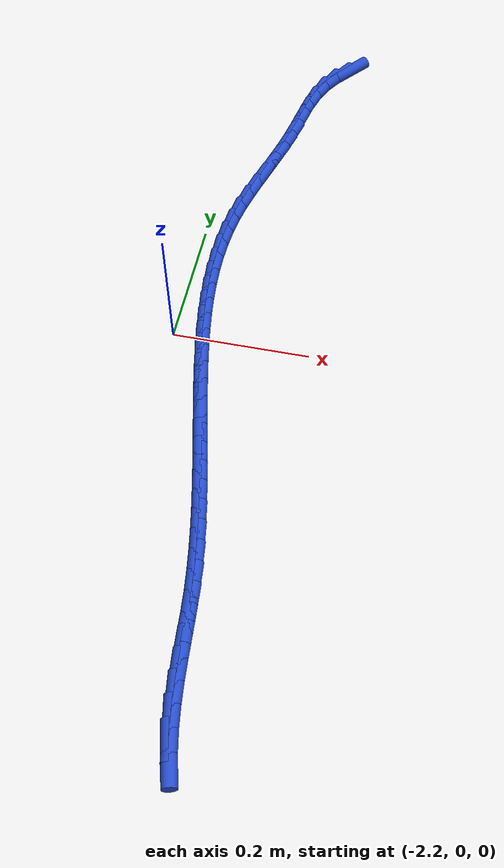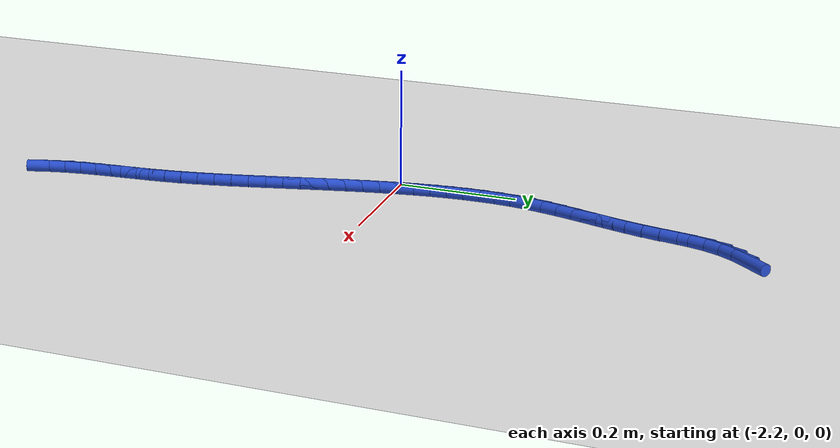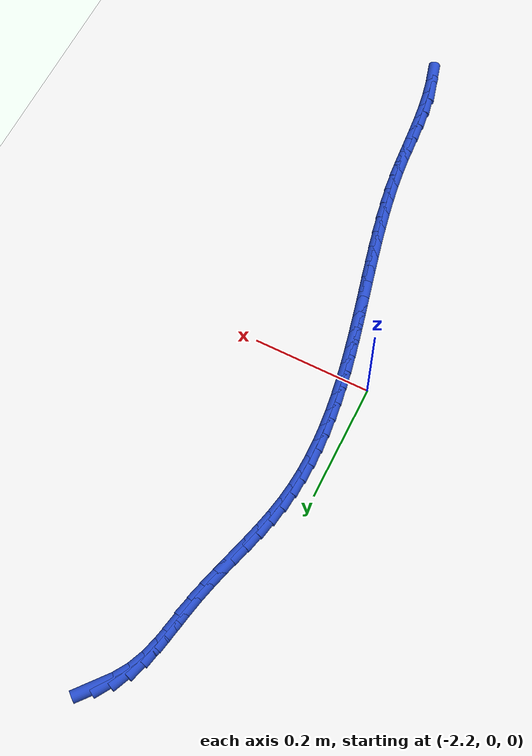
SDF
<sdf version="1.6">
 <world name="default">
  <model name="ground_plane">
   <static>1</static>
   <link name="link">
    <collision name="collision">
     <geometry><plane><normal>0 0 1</normal><size>100 100</size></plane></geometry>
     <surface><friction><ode><mu>100</mu><mu2>50</mu2></ode></friction></surface>
    </collision>
    <visual name="visual">
     <cast_shadows>0</cast_shadows>
     <geometry><plane><normal>0 0 1</normal><size>100 100</size></plane></geometry>
     <material>
      <script><uri>file://media/materials/scripts/gazebo.material</uri><name>Gazebo/WhiteGlow</name></script>
     </material>
    </visual>
   </link>
  </model>
  <model name="line">
   <link name="link_105">
    <pose>-2.0451011327353075 0.6059381143410887 0.01 0 1.57 0.8765070455269848</pose>
    <collision name="collision">
     <geometry><cylinder><radius>0.01</radius><length>0.08</length></cylinder></geometry>
    </collision>
    <visual name="visual">
     <material>
      <script><name>Gazebo/Blue</name><uri>file://media/materials/scripts/gazebo.material</uri></script>
     </material>
     <geometry><cylinder><radius>0.01</radius><length>0.08</length></cylinder></geometry>
    </visual>
   </link>
   <link name="link_106">
    <pose>-2.0628292929744494 0.5846448895388238 0.01 0 1.57 1.0105025616297145</pose>
    <collision name="collision">
     <geometry><cylinder><radius>0.01</radius><length>0.08</length></cylinder></geometry>
    </collision>
    <visual name="visual">
     <material>
      <script><name>Gazebo/Blue</name><uri>file://media/materials/scripts/gazebo.material</uri></script>
     </material>
     <geometry><cylinder><radius>0.01</radius><length>0.08</length></cylinder></geometry>
    </visual>
   </link>
   <link name="link_107">
    <pose>-2.0773413886523078 0.5615128403104395 0.01 0 1.57 1.1645676651206631</pose>
    <collision name="collision">
     <geometry><cylinder><radius>0.01</radius><length>0.08</length></cylinder></geometry>
    </collision>
    <visual name="visual">
     <material>
      <script><name>Gazebo/Blue</name><uri>file://media/materials/scripts/gazebo.material</uri></script>
     </material>
     <geometry><cylinder><radius>0.01</radius><length>0.08</length></cylinder></geometry>
    </visual>
   </link>
   <link name="link_108">
    <pose>-2.0881981461120454 0.5362736509443689 0.01 0 1.57 1.2863366066846509</pose>
    <collision name="collision">
     <geometry><cylinder><radius>0.01</radius><length>0.08</length></cylinder></geometry>
    </collision>
    <visual name="visual">
     <material>
      <script><name>Gazebo/Blue</name><uri>file://media/materials/scripts/gazebo.material</uri></script>
     </material>
     <geometry><cylinder><radius>0.01</radius><length>0.08</length></cylinder></geometry>
    </visual>
   </link>
   <link name="link_109">
    <pose>-2.0960904816906867 0.5092810675359173 0.01 0 1.57 1.358252951638244</pose>
    <collision name="collision">
     <geometry><cylinder><radius>0.01</radius><length>0.08</length></cylinder></geometry>
    </collision>
    <visual name="visual">
     <material>
      <script><name>Gazebo/Blue</name><uri>file://media/materials/scripts/gazebo.material</uri></script>
     </material>
     <geometry><cylinder><radius>0.01</radius><length>0.08</length></cylinder></geometry>
    </visual>
   </link>
   <link name="link_110">
    <pose>-2.1021636404157062 0.4811389007957508 0.01 0 1.57 1.3847210854813032</pose>
    <collision name="collision">
     <geometry><cylinder><radius>0.01</radius><length>0.08</length></cylinder></geometry>
    </collision>
    <visual name="visual">
     <material>
      <script><name>Gazebo/Blue</name><uri>file://media/materials/scripts/gazebo.material</uri></script>
     </material>
     <geometry><cylinder><radius>0.01</radius><length>0.08</length></cylinder></geometry>
    </visual>
   </link>
   <link name="link_111">
    <pose>-2.107564102062997 0.4524516410457826 0.01 0 1.57 1.3686703575400883</pose>
    <collision name="collision">
     <geometry><cylinder><radius>0.01</radius><length>0.08</length></cylinder></geometry>
    </collision>
    <visual name="visual">
     <material>
      <script><name>Gazebo/Blue</name><uri>file://media/materials/scripts/gazebo.material</uri></script>
     </material>
     <geometry><cylinder><radius>0.01</radius><length>0.08</length></cylinder></geometry>
    </visual>
   </link>
   <link name="link_112">
    <pose>-2.1134312896337626 0.42382064433001476 0.01 0 1.57 1.3298997513627309</pose>
    <collision name="collision">
     <geometry><cylinder><radius>0.01</radius><length>0.08</length></cylinder></geometry>
    </collision>
    <visual name="visual">
     <material>
      <script><name>Gazebo/Blue</name><uri>file://media/materials/scripts/gazebo.material</uri></script>
     </material>
     <geometry><cylinder><radius>0.01</radius><length>0.08</length></cylinder></geometry>
    </visual>
   </link>
   <link name="link_113">
    <pose>-2.120362575452353 0.3956065140061869 0.01 0 1.57 1.3017917074343772</pose>
    <collision name="collision">
     <geometry><cylinder><radius>0.01</radius><length>0.08</length></cylinder></geometry>
    </collision>
    <visual name="visual">
     <material>
      <script><name>Gazebo/Blue</name><uri>file://media/materials/scripts/gazebo.material</uri></script>
     </material>
     <geometry><cylinder><radius>0.01</radius><length>0.08</length></cylinder></geometry>
    </visual>
   </link>
   <link name="link_114">
    <pose>-2.1280387351310086 0.3677627455174387 0.01 0 1.57 1.2878319488418943</pose>
    <collision name="collision">
     <geometry><cylinder><radius>0.01</radius><length>0.08</length></cylinder></geometry>
    </collision>
    <visual name="visual">
     <material>
      <script><name>Gazebo/Blue</name><uri>file://media/materials/scripts/gazebo.material</uri></script>
     </material>
     <geometry><cylinder><radius>0.01</radius><length>0.08</length></cylinder></geometry>
    </visual>
   </link>
   <link name="link_115">
    <pose>-2.1360520356680004 0.3402035230626302 0.01 0 1.57 1.2882636323386303</pose>
    <collision name="collision">
     <geometry><cylinder><radius>0.01</radius><length>0.08</length></cylinder></geometry>
    </collision>
    <visual name="visual">
     <material>
      <script><name>Gazebo/Blue</name><uri>file://media/materials/scripts/gazebo.material</uri></script>
     </material>
     <geometry><cylinder><radius>0.01</radius><length>0.08</length></cylinder></geometry>
    </visual>
   </link>
   <link name="link_116">
    <pose>-2.1439947440616027 0.3128430308406224 0.01 0 1.57 1.3034096502675063</pose>
    <collision name="collision">
     <geometry><cylinder><radius>0.01</radius><length>0.08</length></cylinder></geometry>
    </collision>
    <visual name="visual">
     <material>
      <script><name>Gazebo/Blue</name><uri>file://media/materials/scripts/gazebo.material</uri></script>
     </material>
     <geometry><cylinder><radius>0.01</radius><length>0.08</length></cylinder></geometry>
    </visual>
   </link>
   <link name="link_117">
    <pose>-2.15145912731009 0.2855954530502759 0.01 0 1.57 1.3336745681096756</pose>
    <collision name="collision">
     <geometry><cylinder><radius>0.01</radius><length>0.08</length></cylinder></geometry>
    </collision>
    <visual name="visual">
     <material>
      <script><name>Gazebo/Blue</name><uri>file://media/materials/scripts/gazebo.material</uri></script>
     </material>
     <geometry><cylinder><radius>0.01</radius><length>0.08</length></cylinder></geometry>
    </visual>
   </link>
   <link name="link_118">
    <pose>-2.158037452411735 0.2583749738904505 0.01 0 1.57 1.3794357062294926</pose>
    <collision name="collision">
     <geometry><cylinder><radius>0.01</radius><length>0.08</length></cylinder></geometry>
    </collision>
    <visual name="visual">
     <material>
      <script><name>Gazebo/Blue</name><uri>file://media/materials/scripts/gazebo.material</uri></script>
     </material>
     <geometry><cylinder><radius>0.01</radius><length>0.08</length></cylinder></geometry>
    </visual>
   </link>
   <link name="link_119">
    <pose>-2.1633222727455914 0.23109582833513195 0.01 0 1.57 1.4360398229242077</pose>
    <collision name="collision">
     <geometry><cylinder><radius>0.01</radius><length>0.08</length></cylinder></geometry>
    </collision>
    <visual name="visual">
     <material>
      <script><name>Gazebo/Blue</name><uri>file://media/materials/scripts/gazebo.material</uri></script>
     </material>
     <geometry><cylinder><radius>0.01</radius><length>0.08</length></cylinder></geometry>
    </visual>
   </link>
   <link name="link_120">
    <pose>-2.1670371616257325 0.20369548110676042 0.01 0 1.57 1.4907951393421597</pose>
    <collision name="collision">
     <geometry><cylinder><radius>0.01</radius><length>0.08</length></cylinder></geometry>
    </collision>
    <visual name="visual">
     <material>
      <script><name>Gazebo/Blue</name><uri>file://media/materials/scripts/gazebo.material</uri></script>
     </material>
     <geometry><cylinder><radius>0.01</radius><length>0.08</length></cylinder></geometry>
    </visual>
   </link>
   <link name="link_121">
    <pose>-2.169243834570994 0.17617134931866876 0.01 0 1.57 1.5413561769339208</pose>
    <collision name="collision">
     <geometry><cylinder><radius>0.01</radius><length>0.08</length></cylinder></geometry>
    </collision>
    <visual name="visual">
     <material>
      <script><name>Gazebo/Blue</name><uri>file://media/materials/scripts/gazebo.material</uri></script>
     </material>
     <geometry><cylinder><radius>0.01</radius><length>0.08</length></cylinder></geometry>
    </visual>
   </link>
   <link name="link_122">
    <pose>-2.170057823685849 0.14853039172948945 0.01 0 1.57 -1.5541078276756584</pose>
    <collision name="collision">
     <geometry><cylinder><radius>0.01</radius><length>0.08</length></cylinder></geometry>
    </collision>
    <visual name="visual">
     <material>
      <script><name>Gazebo/Blue</name><uri>file://media/materials/scripts/gazebo.material</uri></script>
     </material>
     <geometry><cylinder><radius>0.01</radius><length>0.08</length></cylinder></geometry>
    </visual>
   </link>
   <link name="link_123">
    <pose>-2.169594661074772 0.12077956709785441 0.01 0 1.57 -1.5125296984300345</pose>
    <collision name="collision">
     <geometry><cylinder><radius>0.01</radius><length>0.08</length></cylinder></geometry>
    </collision>
    <visual name="visual">
     <material>
      <script><name>Gazebo/Blue</name><uri>file://media/materials/scripts/gazebo.material</uri></script>
     </material>
     <geometry><cylinder><radius>0.01</radius><length>0.08</length></cylinder></geometry>
    </visual>
   </link>
   <link name="link_124">
    <pose>-2.1679698788422335 0.09292583418239667 0.01 0 1.57 -1.475525686442755</pose>
    <collision name="collision">
     <geometry><cylinder><radius>0.01</radius><length>0.08</length></cylinder></geometry>
    </collision>
    <visual name="visual">
     <material>
      <script><name>Gazebo/Blue</name><uri>file://media/materials/scripts/gazebo.material</uri></script>
     </material>
     <geometry><cylinder><radius>0.01</radius><length>0.08</length></cylinder></geometry>
    </visual>
   </link>
   <link name="link_125">
    <pose>-2.165299009092709 0.0649761517417482 0.01 0 1.57 -1.4430508606623411</pose>
    <collision name="collision">
     <geometry><cylinder><radius>0.01</radius><length>0.08</length></cylinder></geometry>
    </collision>
    <visual name="visual">
     <material>
      <script><name>Gazebo/Blue</name><uri>file://media/materials/scripts/gazebo.material</uri></script>
     </material>
     <geometry><cylinder><radius>0.01</radius><length>0.08</length></cylinder></geometry>
    </visual>
   </link>
   <link name="link_126">
    <pose>-2.161697583930671 0.03693747853454095 0.01 0 1.57 -1.4150155630818928</pose>
    <collision name="collision">
     <geometry><cylinder><radius>0.01</radius><length>0.08</length></cylinder></geometry>
    </collision>
    <visual name="visual">
     <material>
      <script><name>Gazebo/Blue</name><uri>file://media/materials/scripts/gazebo.material</uri></script>
     </material>
     <geometry><cylinder><radius>0.01</radius><length>0.08</length></cylinder></geometry>
    </visual>
   </link>
   <link name="link_127">
    <pose>-2.1572811354605923 0.008816773319408028 0.01 0 1.57 -1.3913055791698343</pose>
    <collision name="collision">
     <geometry><cylinder><radius>0.01</radius><length>0.08</length></cylinder></geometry>
    </collision>
    <visual name="visual">
     <material>
      <script><name>Gazebo/Blue</name><uri>file://media/materials/scripts/gazebo.material</uri></script>
     </material>
     <geometry><cylinder><radius>0.01</radius><length>0.08</length></cylinder></geometry>
    </visual>
   </link>
   <link name="link_128">
    <pose>-2.152165195786947 -0.01937900514501863 0.01 0 1.57 -1.3717982521384768</pose>
    <collision name="collision">
     <geometry><cylinder><radius>0.01</radius><length>0.08</length></cylinder></geometry>
    </collision>
    <visual name="visual">
     <material>
      <script><name>Gazebo/Blue</name><uri>file://media/materials/scripts/gazebo.material</uri></script>
     </material>
     <geometry><cylinder><radius>0.01</radius><length>0.08</length></cylinder></geometry>
    </visual>
   </link>
   <link name="link_129">
    <pose>-2.146465297014207 -0.04764289810010674 0.01 0 1.57 -1.3563747421648016</pose>
    <collision name="collision">
     <geometry><cylinder><radius>0.01</radius><length>0.08</length></cylinder></geometry>
    </collision>
    <visual name="visual">
     <material>
      <script><name>Gazebo/Blue</name><uri>file://media/materials/scripts/gazebo.material</uri></script>
     </material>
     <geometry><cylinder><radius>0.01</radius><length>0.08</length></cylinder></geometry>
    </visual>
   </link>
   <link name="link_130">
    <pose>-2.1402969712468463 -0.0759679467872239 0.01 0 1.57 -1.3449289434839131</pose>
    <collision name="collision">
     <geometry><cylinder><radius>0.01</radius><length>0.08</length></cylinder></geometry>
    </collision>
    <visual name="visual">
     <material>
      <script><name>Gazebo/Blue</name><uri>file://media/materials/scripts/gazebo.material</uri></script>
     </material>
     <geometry><cylinder><radius>0.01</radius><length>0.08</length></cylinder></geometry>
    </visual>
   </link>
   <link name="link_131">
    <pose>-2.1337757505893387 -0.1043471924477379 0.01 0 1.57 -1.3373736649239343</pose>
    <collision name="collision">
     <geometry><cylinder><radius>0.01</radius><length>0.08</length></cylinder></geometry>
    </collision>
    <visual name="visual">
     <material>
      <script><name>Gazebo/Blue</name><uri>file://media/materials/scripts/gazebo.material</uri></script>
     </material>
     <geometry><cylinder><radius>0.01</radius><length>0.08</length></cylinder></geometry>
    </visual>
   </link>
   <link name="link_132">
    <pose>-2.1270171671461555 -0.13277367632301626 0.01 0 1.57 -1.3336446397047366</pose>
    <collision name="collision">
     <geometry><cylinder><radius>0.01</radius><length>0.08</length></cylinder></geometry>
    </collision>
    <visual name="visual">
     <material>
      <script><name>Gazebo/Blue</name><uri>file://media/materials/scripts/gazebo.material</uri></script>
     </material>
     <geometry><cylinder><radius>0.01</radius><length>0.08</length></cylinder></geometry>
    </visual>
   </link>
   <link name="link_133">
    <pose>-2.120136753021771 -0.1612404396544276 0.01 0 1.57 -1.3337028215714029</pose>
    <collision name="collision">
     <geometry><cylinder><radius>0.01</radius><length>0.08</length></cylinder></geometry>
    </collision>
    <visual name="visual">
     <material>
      <script><name>Gazebo/Blue</name><uri>file://media/materials/scripts/gazebo.material</uri></script>
     </material>
     <geometry><cylinder><radius>0.01</radius><length>0.08</length></cylinder></geometry>
    </visual>
   </link>
   <link name="link_134">
    <pose>-2.1132500403206587 -0.18974052368333794 0.01 0 1.57 -1.3375352861655907</pose>
    <collision name="collision">
     <geometry><cylinder><radius>0.01</radius><length>0.08</length></cylinder></geometry>
    </collision>
    <visual name="visual">
     <material>
      <script><name>Gazebo/Blue</name><uri>file://media/materials/scripts/gazebo.material</uri></script>
     </material>
     <geometry><cylinder><radius>0.01</radius><length>0.08</length></cylinder></geometry>
    </visual>
   </link>
   <link name="link_135">
    <pose>-2.1064725611472914 -0.2182669696511157 0.01 0 1.57 -1.3451549102691003</pose>
    <collision name="collision">
     <geometry><cylinder><radius>0.01</radius><length>0.08</length></cylinder></geometry>
    </collision>
    <visual name="visual">
     <material>
      <script><name>Gazebo/Blue</name><uri>file://media/materials/scripts/gazebo.material</uri></script>
     </material>
     <geometry><cylinder><radius>0.01</radius><length>0.08</length></cylinder></geometry>
    </visual>
   </link>
   <link name="link_136">
    <pose>-2.0999198476061425 -0.24681281879912867 0.01 0 1.57 -1.3565988569734626</pose>
    <collision name="collision">
     <geometry><cylinder><radius>0.01</radius><length>0.08</length></cylinder></geometry>
    </collision>
    <visual name="visual">
     <material>
      <script><name>Gazebo/Blue</name><uri>file://media/materials/scripts/gazebo.material</uri></script>
     </material>
     <geometry><cylinder><radius>0.01</radius><length>0.08</length></cylinder></geometry>
    </visual>
   </link>
   <link name="link_137">
    <pose>-2.0937074318016844 -0.2753711123687444 0.01 0 1.57 -1.3719257562513654</pose>
    <collision name="collision">
     <geometry><cylinder><radius>0.01</radius><length>0.08</length></cylinder></geometry>
    </collision>
    <visual name="visual">
     <material>
      <script><name>Gazebo/Blue</name><uri>file://media/materials/scripts/gazebo.material</uri></script>
     </material>
     <geometry><cylinder><radius>0.01</radius><length>0.08</length></cylinder></geometry>
    </visual>
   </link>
   <link name="link_138">
    <pose>-2.0879508458383906 -0.3039348916013306 0.01 0 1.57 -1.391211341918376</pose>
    <collision name="collision">
     <geometry><cylinder><radius>0.01</radius><length>0.08</length></cylinder></geometry>
    </collision>
    <visual name="visual">
     <material>
      <script><name>Gazebo/Blue</name><uri>file://media/materials/scripts/gazebo.material</uri></script>
     </material>
     <geometry><cylinder><radius>0.01</radius><length>0.08</length></cylinder></geometry>
    </visual>
   </link>
   <link name="link_139">
    <pose>-2.082765621820734 -0.332497197738255 0.01 0 1.57 -1.4145421961945794</pose>
    <collision name="collision">
     <geometry><cylinder><radius>0.01</radius><length>0.08</length></cylinder></geometry>
    </collision>
    <visual name="visual">
     <material>
      <script><name>Gazebo/Blue</name><uri>file://media/materials/scripts/gazebo.material</uri></script>
     </material>
     <geometry><cylinder><radius>0.01</radius><length>0.08</length></cylinder></geometry>
    </visual>
   </link>
   <link name="link_140">
    <pose>-2.0782672918531895 -0.3610510720208861 0.01 0 1.57 -1.4420071798306424</pose>
    <collision name="collision">
     <geometry><cylinder><radius>0.01</radius><length>0.08</length></cylinder></geometry>
    </collision>
    <visual name="visual">
     <material>
      <script><name>Gazebo/Blue</name><uri>file://media/materials/scripts/gazebo.material</uri></script>
     </material>
     <geometry><cylinder><radius>0.01</radius><length>0.08</length></cylinder></geometry>
    </visual>
   </link>
   <link name="link_141">
    <pose>-2.074571388040228 -0.38958955569058984 0.01 0 1.57 -1.4714405068572463</pose>
    <collision name="collision">
     <geometry><cylinder><radius>0.01</radius><length>0.08</length></cylinder></geometry>
    </collision>
    <visual name="visual">
     <material>
      <script><name>Gazebo/Blue</name><uri>file://media/materials/scripts/gazebo.material</uri></script>
     </material>
     <geometry><cylinder><radius>0.01</radius><length>0.08</length></cylinder></geometry>
    </visual>
   </link>
   <link name="link_142">
    <pose>-2.0717289325885684 -0.4181042025205262 0.01 0 1.57 -1.4905070012201704</pose>
    <collision name="collision">
     <geometry><cylinder><radius>0.01</radius><length>0.08</length></cylinder></geometry>
    </collision>
    <visual name="visual">
     <material>
      <script><name>Gazebo/Blue</name><uri>file://media/materials/scripts/gazebo.material</uri></script>
     </material>
     <geometry><cylinder><radius>0.01</radius><length>0.08</length></cylinder></geometry>
    </visual>
   </link>
   <link name="link_143">
    <pose>-2.069437831322166 -0.4465784241318504 0.01 0 1.57 -1.4948528409535062</pose>
    <collision name="collision">
     <geometry><cylinder><radius>0.01</radius><length>0.08</length></cylinder></geometry>
    </collision>
    <visual name="visual">
     <material>
      <script><name>Gazebo/Blue</name><uri>file://media/materials/scripts/gazebo.material</uri></script>
     </material>
     <geometry><cylinder><radius>0.01</radius><length>0.08</length></cylinder></geometry>
    </visual>
   </link>
   <link name="link_144">
    <pose>-2.0672757819083127 -0.4749928603879301 0.01 0 1.57 -1.4843570419364431</pose>
    <collision name="collision">
     <geometry><cylinder><radius>0.01</radius><length>0.08</length></cylinder></geometry>
    </collision>
    <visual name="visual">
     <material>
      <script><name>Gazebo/Blue</name><uri>file://media/materials/scripts/gazebo.material</uri></script>
     </material>
     <geometry><cylinder><radius>0.01</radius><length>0.08</length></cylinder></geometry>
    </visual>
   </link>
   <link name="link_145">
    <pose>-2.064820381411043 -0.5033281488324252 0.01 0 1.57 -1.4589591219992402</pose>
    <collision name="collision">
     <geometry><cylinder><radius>0.01</radius><length>0.08</length></cylinder></geometry>
    </collision>
    <visual name="visual">
     <material>
      <script><name>Gazebo/Blue</name><uri>file://media/materials/scripts/gazebo.material</uri></script>
     </material>
     <geometry><cylinder><radius>0.01</radius><length>0.08</length></cylinder></geometry>
    </visual>
   </link>
   <link name="link_146">
    <pose>-2.0616492268943882 -0.5315649270089954 0.01 0 1.57 -1.41872632061169</pose>
    <collision name="collision">
     <geometry><cylinder><radius>0.01</radius><length>0.08</length></cylinder></geometry>
    </collision>
    <visual name="visual">
     <material>
      <script><name>Gazebo/Blue</name><uri>file://media/materials/scripts/gazebo.material</uri></script>
     </material>
     <geometry><cylinder><radius>0.01</radius><length>0.08</length></cylinder></geometry>
    </visual>
   </link>
   <link name="link_147">
    <pose>-2.057339915422384 -0.5596838324612999 0.01 0 1.57 -1.3646427919069408</pose>
    <collision name="collision">
     <geometry><cylinder><radius>0.01</radius><length>0.08</length></cylinder></geometry>
    </collision>
    <visual name="visual">
     <material>
      <script><name>Gazebo/Blue</name><uri>file://media/materials/scripts/gazebo.material</uri></script>
     </material>
     <geometry><cylinder><radius>0.01</radius><length>0.08</length></cylinder></geometry>
    </visual>
   </link>
   <link name="link_148">
    <pose>-2.051489488907368 -0.587659637503345 0.01 0 1.57 -1.3047703491389797</pose>
    <collision name="collision">
     <geometry><cylinder><radius>0.01</radius><length>0.08</length></cylinder></geometry>
    </collision>
    <visual name="visual">
     <material>
      <script><name>Gazebo/Blue</name><uri>file://media/materials/scripts/gazebo.material</uri></script>
     </material>
     <geometry><cylinder><radius>0.01</radius><length>0.08</length></cylinder></geometry>
    </visual>
   </link>
  </model>
 </world>
</sdf>
